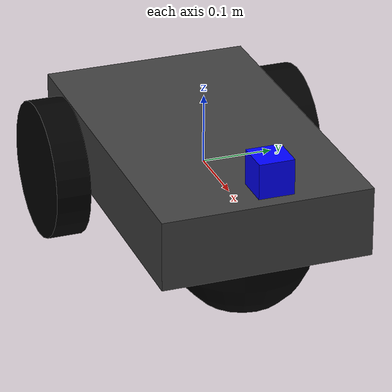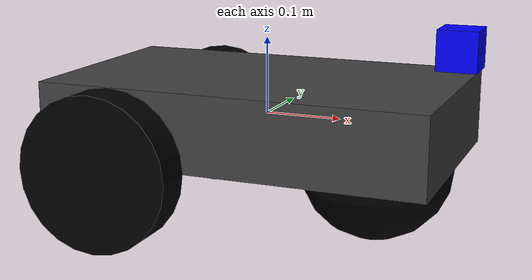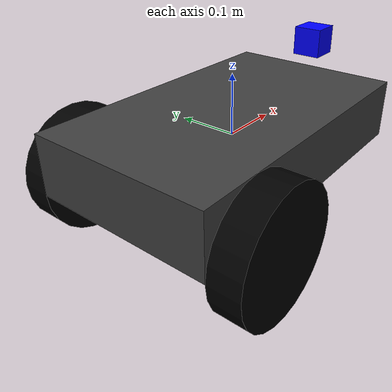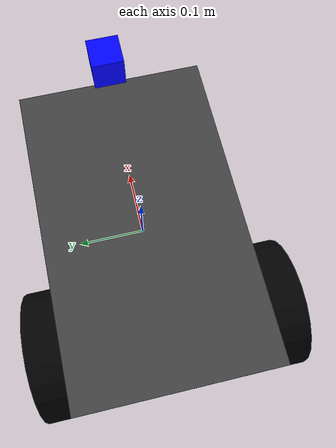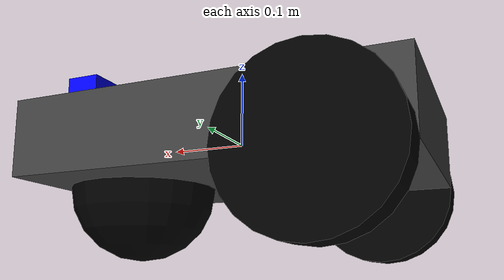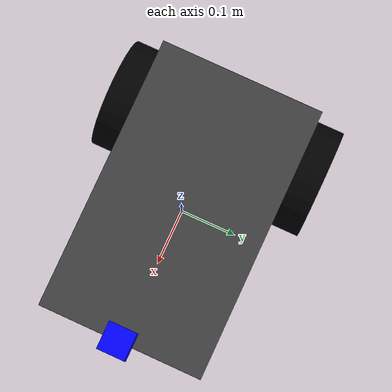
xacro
<?xml version="1.0"?>

<robot name="differential_drive_robot" xmlns:xacro="http://www.ros.org/wiki/xacro">

    <!-- Robot Parameters -->
    <xacro:property name="PI" value="3.14159265"/>
    <xacro:property name="body_length" value="0.5"/>
    <xacro:property name="body_width" value="0.3"/>
    <xacro:property name="body_height" value="0.1"/>
    <xacro:property name="body_density" value="7850.0"/> <!-- Steel -->
    <xacro:property name="body_mass" value="${body_density * body_length * body_height * body_width}"/>
    <xacro:property name="body_inertia_x" value="${1.0/12.0 * body_mass * (body_height*body_height + body_width*body_width)}"/>
    <xacro:property name="body_inertia_y" value="${1.0/12.0 * body_mass * (body_length*body_length + body_height*body_height)}"/>
    <xacro:property name="body_inertia_z" value="${1.0/12.0 * body_mass * (body_length*body_length + body_width*body_width)}"/>

    <xacro:property name="wheel_radius" value="0.1"/>
    <xacro:property name="wheel_width" value="0.05"/>
    <xacro:property name="wheel_separation" value="${body_width + wheel_width}"/>
    <xacro:property name="wheel_offset" value="${body_length/2 - wheel_radius}"/>
    <xacro:property name="wheel_density" value="900"/> <!-- Ruber -->
    <xacro:property name="wheel_mass" value="${wheel_density * PI * wheel_radius * wheel_radius * wheel_width}"/>
    <xacro:property name="wheel_inertia_x" value="${1.0/12.0 * wheel_mass * (3*wheel_radius*wheel_radius + wheel_width*wheel_width)}"/>
    <xacro:property name="wheel_inertia_y" value="${1.0/12.0 * wheel_mass * (3*wheel_radius*wheel_radius + wheel_width*wheel_width)}"/>
    <xacro:property name="wheel_inertia_z" value="${1.0/2.0 * wheel_mass * wheel_radius * wheel_radius}"/>

    <xacro:property name="caster_radius" value="0.1"/>
    <xacro:property name="caster_offset" value="${body_length/2 - caster_radius}"/>
    <xacro:property name="caster_density" value="0.1"/>
    <xacro:property name="caster_mass" value="${caster_density * 4.0/3.0 * PI * caster_radius * caster_radius * caster_radius}"/>
    <xacro:property name="caster_inertia_x" value="${2.0/5.0 * caster_mass * caster_radius * caster_radius}"/>
    <xacro:property name="caster_inertia_y" value="${2.0/5.0 * caster_mass * caster_radius * caster_radius}"/>
    <xacro:property name="caster_inertia_z" value="${2.0/5.0 * caster_mass * caster_radius * caster_radius}"/>

    <!-- Control Parameters -->
    <xacro:property name="max_linear_acceleration" value="10"/>

    <!-- Links -->

    <!-- Body Link -->
    <link name="body_link">
        <visual>
            <origin xyz="0.0 0.0 0.0" rpy="0.0 0.0 0.0"/>
            <geometry>
                <box size="${body_length} ${body_width} ${body_height}"/>
            </geometry>
            <material name="body_material">
                <color rgba="0.25 0.25 0.25 1.0"/>
            </material>
        </visual>
        <collision>
            <origin xyz="0.0 0.0 0.0" rpy="0.0 0.0 0.0"/>
            <geometry>
                <box size="${body_length} ${body_width} ${body_height}"/>
            </geometry>
        </collision>
        <inertial>
            <mass value="10"/>
            <inertia ixx="${body_inertia_x}" ixy="0.0" ixz="0.0" iyy="${body_inertia_y}" iyz="0" izz="${body_inertia_z}"/>
            <origin xyz="0 0 0" rpy="0 0 0"/>
        </inertial>
    </link>

    <!-- Left Wheel -->
    <link name="left_wheel_link">
        <visual>
            <origin xyz="0.0 0.0 0.0" rpy="1.570795 0.0 0.0"/>
            <geometry>
                <cylinder radius="${wheel_radius}" length="${wheel_width}"/>
            </geometry>
            <material name="wheel_material">
                <color rgba="0.0 0.0 0.0 1.0"/>
            </material>
        </visual>
        <collision>
            <origin xyz="0.0 0.0 0.0" rpy="1.570795 0.0 0.0"/>
            <geometry>
                <cylinder radius="${wheel_radius}" length="${wheel_width}"/>
            </geometry>
        </collision>
        <inertial>
            <mass value="2"/>
            <inertia ixx="${wheel_inertia_x}" ixy="0.0" ixz="0.0" iyy="${wheel_inertia_y}" iyz="0" izz="${wheel_inertia_z}"/>
            <origin xyz="0.0 0.0 0.0" rpy="1.570795 0.0 0.0"/>
        </inertial>
    </link>

    <!-- Right Wheel -->
    <link name="right_wheel_link">
        <visual>
            <origin xyz="0.0 0.0 0.0" rpy="1.570795 0.0 0.0"/>
            <geometry>
                <cylinder radius="${wheel_radius}" length="${wheel_width}"/>
            </geometry>
            <material name="wheel_material">
                <color rgba="0.0 0.0 0.0 1.0"/>
            </material>
        </visual>
        <collision>
            <origin xyz="0.0 0.0 0.0" rpy="1.570795 0.0 0.0"/>
            <geometry>
                <cylinder radius="${wheel_radius}" length="${wheel_width}"/>
            </geometry>
        </collision>
        <inertial>
            <mass value="2"/>
            <inertia ixx="${wheel_inertia_x}" ixy="0.0" ixz="0.0" iyy="${wheel_inertia_y}" iyz="0" izz="${wheel_inertia_z}"/>
            <origin xyz="0.0 0.0 0.0" rpy="1.570795 0.0 0.0"/>
        </inertial>
    </link>

    <!-- Caster Wheel -->
    <link name="caster_link">
        <visual>
            <origin xyz="0.0 0.0 0.0" rpy="0.0 0.0 0.0"/>
            <geometry>
                <sphere radius="${caster_radius}"/>
            </geometry>
            <material name="caster_material">
                <color rgba="0.0 0.0 0.0 1.0"/>
            </material>
        </visual>
        <collision>
            <origin xyz="0.0 0.0 0.0" rpy="0.0 0.0 0.0"/>
            <geometry>
                <sphere radius="${caster_radius}"/>
            </geometry>
        </collision>
        <inertial>
            <mass value="0.5"/>
            <inertia ixx="${caster_inertia_x}" ixy="0.0" ixz="0.0" iyy="${caster_inertia_y}" iyz="0" izz="${caster_inertia_z}"/>
            <origin xyz="0 0 0" rpy="0 0 0"/>
        </inertial>
    </link>

    <!-- Joints -->

    <!-- Left Wheel Joint -->
    <joint name="left_wheel_joint" type="continuous">
        <origin xyz="-${wheel_offset} ${wheel_separation/2} -${wheel_radius/2}" rpy="0 0 0"/>
        <parent link="body_link"/>
        <child link="left_wheel_link"/>
        <axis xyz="0 1 0"/>
        <limit effort="100" velocity="10.0"/>
        <dynamics damping="0.1" friction="0.1"/>
    </joint>

    <!-- Right Wheel Joint -->
    <joint name="right_wheel_joint" type="continuous">
        <origin xyz="-${wheel_offset} ${-wheel_separation/2} -${wheel_radius/2}" rpy="0 0 0"/>
        <parent link="body_link"/>
        <child link="right_wheel_link"/>
        <axis xyz="0 1 0"/>
        <limit effort="100" velocity="10.0"/>
        <dynamics damping="0.1" friction="0.1"/>
    </joint>

    <!-- Caster Wheel Joint (fixed) -->
    <joint name="caster_joint" type="fixed">
        <origin xyz="${caster_offset} 0 -${caster_radius/2}" rpy="0 0 0"/>
        <parent link="body_link"/>
        <child link="caster_link"/>
    </joint>

    <!-- Gazebo Parameters -->
    <gazebo reference="body_link">
        <mu1>1.0</mu1>
        <mu2>1.0</mu2>
    </gazebo>

    <gazebo reference="right_wheel_link">
        <mu1>1.0</mu1>
        <mu2>1.0</mu2>
    </gazebo>

    <gazebo reference="left_wheel_link">
        <mu1>1.0</mu1>
        <mu2>1.0</mu2>
    </gazebo>

    <gazebo reference="caster_link">
        <mu1>0.000001</mu1>
        <mu2>0.000001</mu2>
    </gazebo>

    <!-- Gazebo Plugins -->
    <gazebo>
        <plugin filename="gz-sim-diff-drive-system" name="gz::sim::systems::DiffDrive">
            <right_joint>right_wheel_joint</right_joint>
            <left_joint>left_wheel_joint</left_joint>
            <wheel_separation>${wheel_separation}</wheel_separation>
            <wheel_radius>${wheel_radius}</wheel_radius>
            <max_linear_acceleration>${max_linear_acceleration}</max_linear_acceleration>
            <odom_publish_frequency>100</odom_publish_frequency>
            <topic>cmd_vel</topic>
            <odom_topic>odom</odom_topic>
        </plugin>

        <plugin filename="gz-sim-joint-state-publisher-system" name="gz::sim::systems::JointStatePublisher">
            <topic>joint_states</topic>
            <joint_name>right_wheel_joint</joint_name>
            <joint_name>left_wheel_joint</joint_name>
        </plugin>

        <plugin filename="gz-sim-sensors-system" name="gz::sim::systems::Sensors">
            <render_engine>ogre</render_engine>
        </plugin>
    </gazebo>

    <!-- Camera -->
    <link name="camera_link">
        <visual>
            <origin xyz="0 0 0" rpy="0 0 0"/>
            <geometry>
                <box size="0.05 0.05 0.05"/>
            </geometry>
            <material name="camera_mat">
                <color rgba="0 0 1 1"/>
            </material>
        </visual>
    </link>

    <joint name="camera_joint" type="fixed">
        <origin xyz="${body_length/2} 0 ${body_height}" rpy="0 0 0"/>
        <parent link="body_link"/>
        <child link="camera_link"/>
    </joint>

    <gazebo reference="camera_link">
        <sensor name="camera_sensor" type="camera">
            <pose>0 0 0 0 0 0</pose>
            <visualize>true</visualize>
            <update_rate>30.0</update_rate>
            <camera>
                <horizontal_fov>0.9599</horizontal_fov>
                <image>
                    <width>1280</width>
                    <height>720</height>
                    <format>R8G8B8</format>
                </image>
                <clip>
                    <near>0.1</near>
                    <far>100</far>
                </clip>
                <noise>
                    <type>gaussian</type>
                    <mean>0.0</mean>
                    <stddev>0.005</stddev>
                </noise>
            </camera>
            <topic>camera/image_raw</topic>
        </sensor>

        <plugin filename="gz-sim-image-publisher-system" name="gz::sim::systems::ImagePublisher">
            <topic>camera/image_raw/compressed</topic>
            <format>JPG</format>
        </plugin>
    </gazebo>

</robot>
